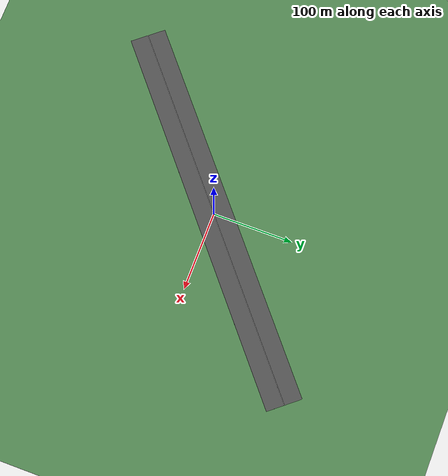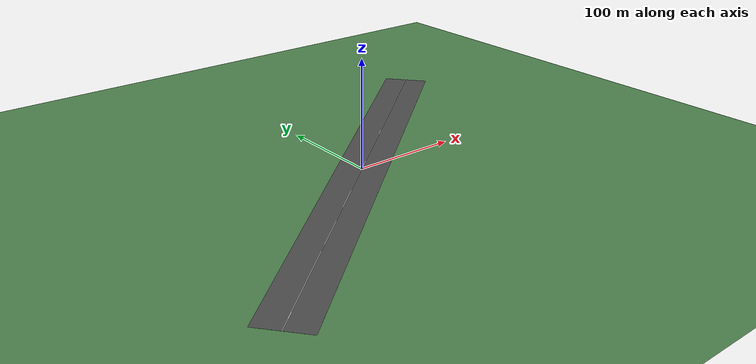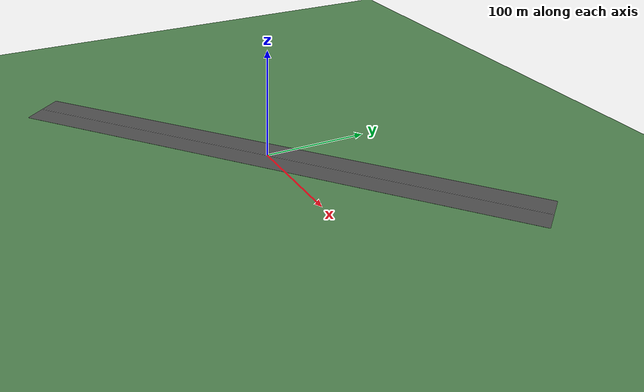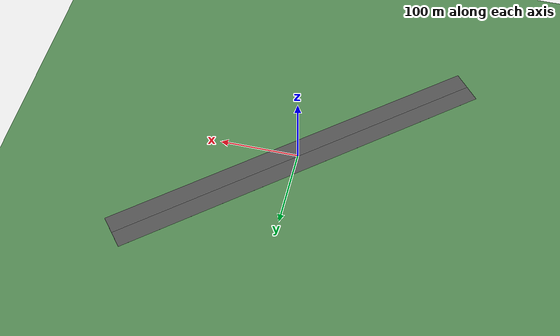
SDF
<?xml version="1.0" ?>
<sdf version="1.9">
  <world name="competition">

    <physics type="ode">
      <max_step_size>0.004</max_step_size>
      <real_time_factor>1.0</real_time_factor>
      <real_time_update_rate>250</real_time_update_rate>
    </physics>
    <gravity>0 0 -9.8</gravity>
    <magnetic_field>6e-06 2.3e-05 -4.2e-05</magnetic_field>
    <atmosphere type='adiabatic'/>

    <!-- ==================== GPS COORDINATES ==================== -->
    <!-- Şanlıurfa GAP Havalimanı (LTCS) - Pist 04/22 -->
    <spherical_coordinates>
      <surface_model>EARTH_WGS84</surface_model>
      <world_frame_orientation>ENU</world_frame_orientation>
      <latitude_deg>37.445617</latitude_deg>
      <longitude_deg>38.895592</longitude_deg>
      <elevation>825</elevation>
    </spherical_coordinates>

    <!-- ==================== SCENE ==================== -->
    <scene>
      <ambient>0.8 0.5 1</ambient>
      <grid>false</grid>
      <sky>
        <clouds>true</clouds>
      </sky>
      <shadows>1</shadows>
    </scene>

    <!-- ==================== LIGHTING ==================== -->
    <light name="sunUTC" type="directional">
      <pose>0 0 500 0 0 0</pose>
      <cast_shadows>true</cast_shadows>
      <intensity>1</intensity>
      <direction>0.001 0.625 -0.78</direction>
      <diffuse>0.904 0.904 0.904 1</diffuse>
      <specular>0.271 0.271 0.271 1</specular>
      <attenuation>
        <range>2000</range>
        <linear>0</linear>
        <constant>1</constant>
        <quadratic>0</quadratic>
      </attenuation>
    </light>

    <!-- ==================== GROUND PLANE ==================== -->
    <model name="ground_plane">
      <static>true</static>
      <link name="link">
        <collision name="collision">
          <geometry>
            <plane>
              <normal>0 0 1</normal>
              <size>1 1</size>
            </plane>
          </geometry>
          <surface>
            <friction>
              <ode>
                <mu>0.8</mu>
                <mu2>0.8</mu2>
              </ode>
            </friction>
            <bounce/>
            <contact/>
          </surface>
        </collision>
        <visual name="visual">
          <geometry>
            <plane>
              <normal>0 0 1</normal>
              <size>2000 2000</size>
            </plane>
          </geometry>
          <material>
            <ambient>0.3 0.5 0.3 1</ambient>
            <diffuse>0.3 0.5 0.3 1</diffuse>
            <specular>0.1 0.1 0.1 1</specular>
          </material>
        </visual>
        <pose>0 0 0 0 0 0</pose>
        <enable_wind>false</enable_wind>
      </link>
      <pose>0 0 0 0 0 0</pose>
    </model>

    <!-- ==================== RUNWAY (Şanlıurfa GAP - Pist 04/22) ==================== -->
    <!-- 40° heading = 0.698 rad, pist merkezi origin'de -->
    <model name="runway">
      <static>true</static>
      <pose>0 0 0.01 0 0 0.698</pose>
      <link name="link">
        <collision name="collision">
          <geometry>
            <box>
              <size>500 45 0.02</size>
            </box>
          </geometry>
          <surface>
            <friction>
              <ode>
                <mu>1.0</mu>
                <mu2>1.0</mu2>
              </ode>
            </friction>
          </surface>
        </collision>
        <visual name="visual">
          <geometry>
            <box>
              <size>500 45 0.02</size>
            </box>
          </geometry>
          <material>
            <ambient>0.2 0.2 0.2 1</ambient>
            <diffuse>0.3 0.3 0.3 1</diffuse>
            <specular>0.1 0.1 0.1 1</specular>
          </material>
        </visual>
      </link>
    </model>

    <!-- ==================== RUNWAY CENTER LINE ==================== -->
    <model name="runway_centerline">
      <static>true</static>
      <pose>0 0 0.02 0 0 0.698</pose>
      <link name="link">
        <visual name="visual">
          <geometry>
            <box>
              <size>500 0.5 0.005</size>
            </box>
          </geometry>
          <material>
            <ambient>1 1 1 1</ambient>
            <diffuse>1 1 1 1</diffuse>
          </material>
        </visual>
      </link>
    </model>

  </world>
</sdf>
